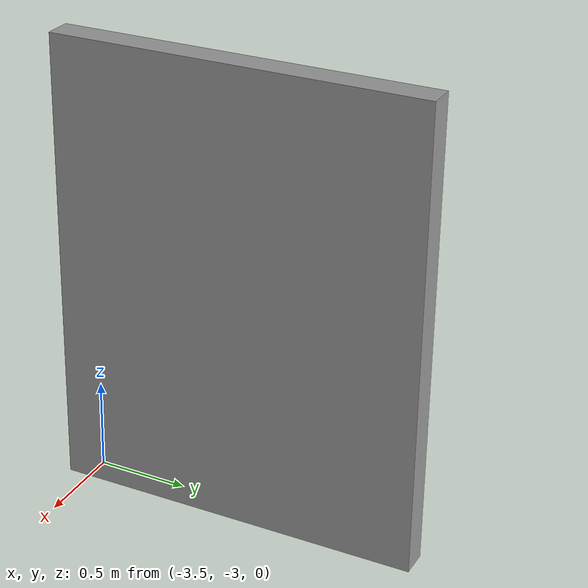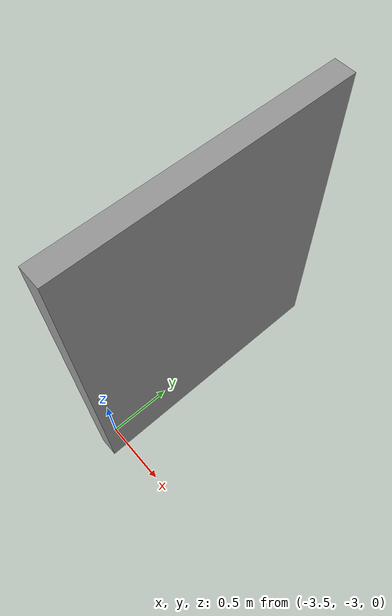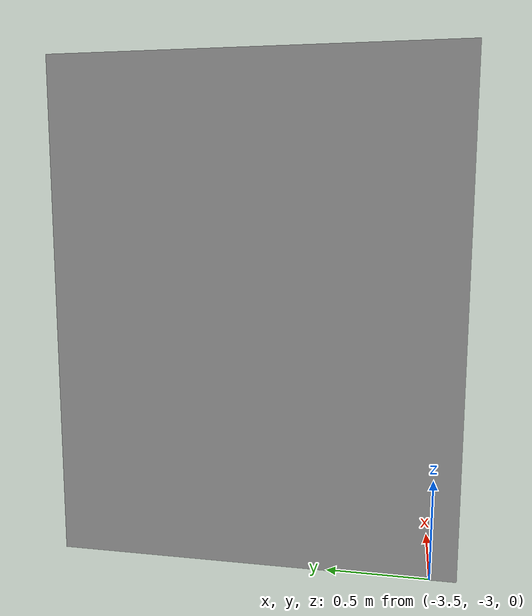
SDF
<?xml version='1.0'?>
<sdf version='1.7'>
  <model name='Untitled'>
    <pose>-1.7525 -1.5625 0 0 -0 0</pose>
    <link name='Wall_0'>
      <collision name='Wall_0_Collision'>
        <geometry>
          <box>
            <size>2 0.15 2.5</size>
          </box>
        </geometry>
        <pose>0 0 1.25 0 -0 0</pose>
      </collision>
      <visual name='Wall_0_Visual'>
        <pose>0 0 1.25 0 -0 0</pose>
        <geometry>
          <box>
            <size>2 0.15 2.5</size>
          </box>
        </geometry>
        <material>
          <script>
            <uri>file://media/materials/scripts/gazebo.material</uri>
            <name>Gazebo/Grey</name>
          </script>
          <ambient>1 1 1 1</ambient>
        </material>
        <meta>
          <layer>0</layer>
        </meta>
      </visual>
      <pose>-1.6775 -0.5625 0 0 -0 1.5708</pose>
    </link>
    <static>1</static>
  </model>
</sdf>
